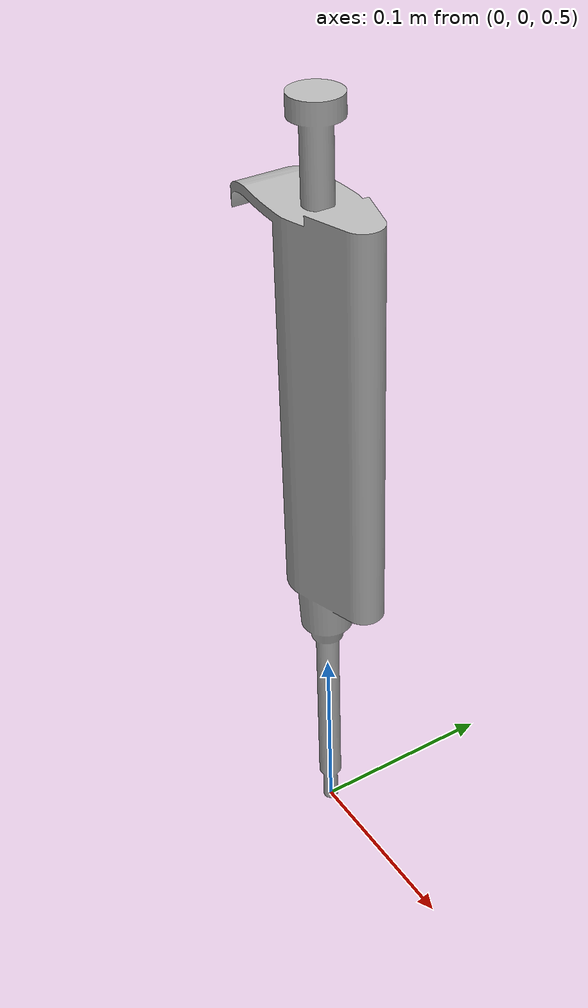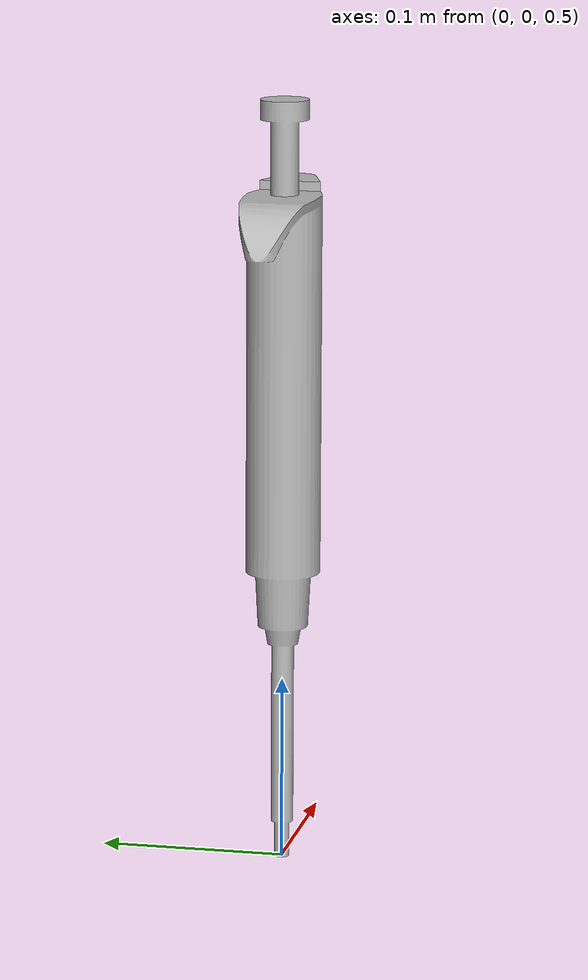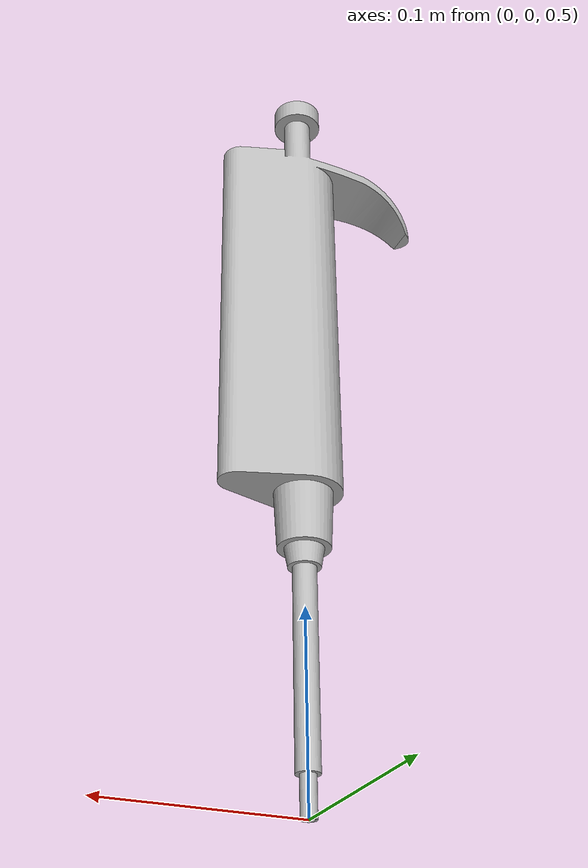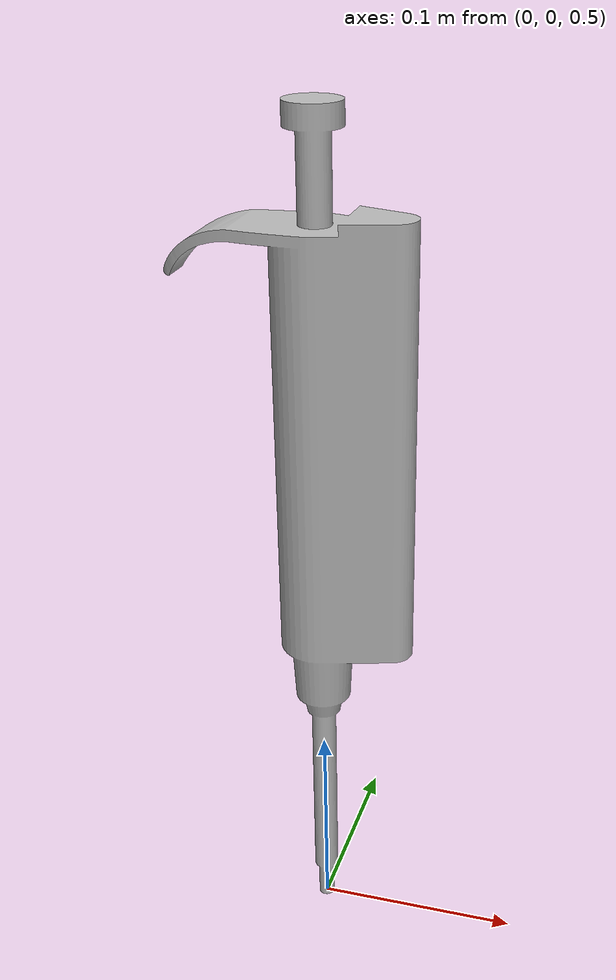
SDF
<?xml version='1.0'?>
<sdf version="1.4">
  <model name="dosator">
    <pose>0 0 0.5 0 0 0</pose>
    <static>true</static>
    <link name="link">
      <collision name="collision">
        <geometry>
          <mesh>
            <uri>meshes/dosator.STL</uri>
          <scale>1 1 1</scale>
          </mesh>
        </geometry>
      </collision>

      <visual name="visual">
        <geometry>
          <mesh>
            <uri>meshes/dosator.STL</uri>
          <scale>1 1 1</scale>
          </mesh>
        </geometry>
      </visual>

    </link>
  </model>
</sdf>
